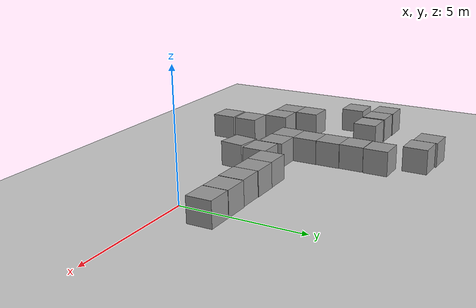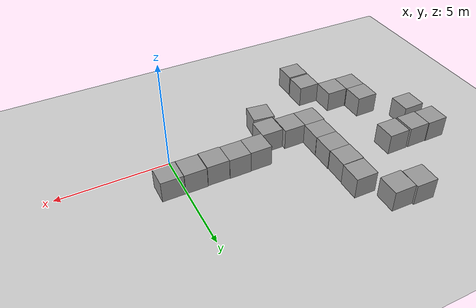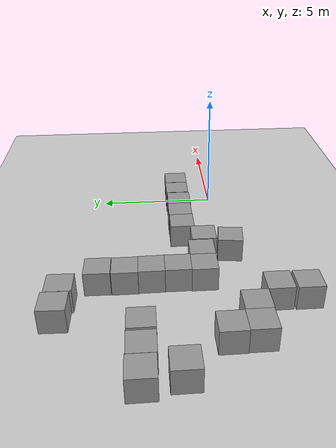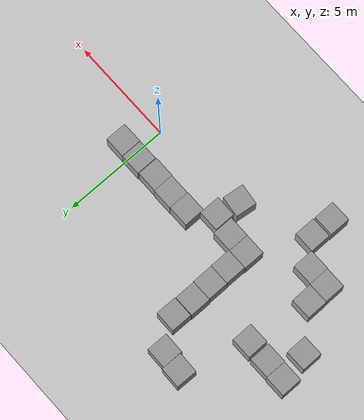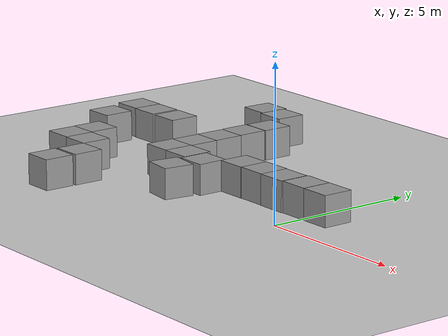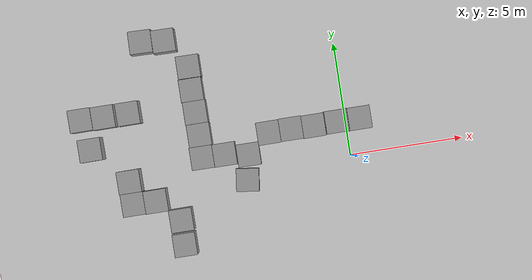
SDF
<sdf version="1.7">
 <world name="default">
  <light name="sun" type="directional">
   <pose>0 0 10 0 -0 0</pose>
   <diffuse>0.8 0.8 0.8 1</diffuse>
   <specular>0.2 0.2 0.2 1</specular>
   <attenuation>
    <range>1000</range>
    <constant>0.9</constant>
    <linear>0.01</linear>
    <quadratic>0.001</quadratic>
   </attenuation>
   <direction>-0.5 0.1 -0.9</direction>
   <spot><inner_angle>0</inner_angle><outer_angle>0</outer_angle><falloff>0</falloff></spot>
  </light>
  <model name="ground_plane">
   <static>1</static>
   <link name="link">
    <collision name="collision">
     <geometry><plane><normal>0 0 1</normal><size>100 100</size></plane></geometry>
     <surface><friction><ode><mu>100</mu><mu2>50</mu2></ode></friction></surface>
    </collision>
    <visual name="visual">
     <cast_shadows>0</cast_shadows>
     <geometry><plane><normal>0 0 1</normal><size>100 100</size></plane></geometry>
     <material>
      <script><uri>file://media/materials/scripts/gazebo.material</uri><name>Gazebo/Grey</name></script>
     </material>
    </visual>
   </link>
  </model>
  <gravity>0 0 -9.8</gravity>
  <magnetic_field>6e-06 2.3e-05 -4.2e-05</magnetic_field>
  <atmosphere type="adiabatic"/>
  <physics type="ode">
   <max_step_size>0.001</max_step_size>
   <real_time_factor>1</real_time_factor>
   <real_time_update_rate>1000</real_time_update_rate>
  </physics>
  <scene><ambient>0.4 0.4 0.4 1</ambient><background>0.7 0.7 0.7 1</background><shadows>1</shadows></scene>
  <audio><device>default</device></audio>
  <spherical_coordinates>
   <surface_model>EARTH_WGS84</surface_model>
   <latitude_deg>0</latitude_deg>
   <longitude_deg>0</longitude_deg>
   <elevation>0</elevation>
   <heading_deg>0</heading_deg>
  </spherical_coordinates>
  <model name="unit_box">
   <pose>-0.438539 1.56413 0.5 0 -0 0</pose>
   <link name="link">
    <inertial>
     <mass>1</mass>
     <inertia>
      <ixx>0.166667</ixx>
      <ixy>0</ixy>
      <ixz>0</ixz>
      <iyy>0.166667</iyy>
      <iyz>0</iyz>
      <izz>0.166667</izz>
     </inertia>
    </inertial>
    <collision name="collision"><geometry><box><size>1 1 1</size></box></geometry></collision>
    <visual name="visual">
     <geometry><box><size>1 1 1</size></box></geometry>
     <material>
      <script><name>Gazebo/Grey</name><uri>file://media/materials/scripts/gazebo.material</uri></script>
     </material>
    </visual>
   </link>
  </model>
  <model name="unit_box_clone">
   <pose>-1.4612 1.53551 0.5 0 -0 -0.000517</pose>
   <link name="link">
    <inertial>
     <mass>1</mass>
     <inertia>
      <ixx>0.166667</ixx>
      <ixy>0</ixy>
      <ixz>0</ixz>
      <iyy>0.166667</iyy>
      <iyz>0</iyz>
      <izz>0.166667</izz>
     </inertia>
    </inertial>
    <collision name="collision"><geometry><box><size>1 1 1</size></box></geometry></collision>
    <visual name="visual">
     <geometry><box><size>1 1 1</size></box></geometry>
     <material>
      <script><name>Gazebo/Grey</name><uri>file://media/materials/scripts/gazebo.material</uri></script>
     </material>
    </visual>
   </link>
  </model>
  <model name="unit_box_clone_0">
   <pose>-2.46123 1.557 0.5 0 0 -0.000525</pose>
   <link name="link">
    <inertial>
     <mass>1</mass>
     <inertia>
      <ixx>0.166667</ixx>
      <ixy>0</ixy>
      <ixz>0</ixz>
      <iyy>0.166667</iyy>
      <iyz>0</iyz>
      <izz>0.166667</izz>
     </inertia>
    </inertial>
    <collision name="collision"><geometry><box><size>1 1 1</size></box></geometry></collision>
    <visual name="visual">
     <geometry><box><size>1 1 1</size></box></geometry>
     <material>
      <script><name>Gazebo/Grey</name><uri>file://media/materials/scripts/gazebo.material</uri></script>
     </material>
    </visual>
   </link>
  </model>
  <model name="unit_box_clone_1">
   <pose>-3.46129 1.54191 0.5 0 -0 -0.000515</pose>
   <link name="link">
    <inertial>
     <mass>1</mass>
     <inertia>
      <ixx>0.166667</ixx>
      <ixy>0</ixy>
      <ixz>0</ixz>
      <iyy>0.166667</iyy>
      <iyz>0</iyz>
      <izz>0.166667</izz>
     </inertia>
    </inertial>
    <collision name="collision"><geometry><box><size>1 1 1</size></box></geometry></collision>
    <visual name="visual">
     <geometry><box><size>1 1 1</size></box></geometry>
     <material>
      <script><name>Gazebo/Grey</name><uri>file://media/materials/scripts/gazebo.material</uri></script>
     </material>
    </visual>
   </link>
  </model>
  <model name="unit_box_clone_2">
   <pose>-4.46349 0.728093 0.5 0 0 -0.002201</pose>
   <link name="link">
    <inertial>
     <mass>1</mass>
     <inertia>
      <ixx>0.166667</ixx>
      <ixy>0</ixy>
      <ixz>0</ixz>
      <iyy>0.166667</iyy>
      <iyz>0</iyz>
      <izz>0.166667</izz>
     </inertia>
    </inertial>
    <collision name="collision"><geometry><box><size>1 1 1</size></box></geometry></collision>
    <visual name="visual">
     <geometry><box><size>1 1 1</size></box></geometry>
     <material>
      <script><name>Gazebo/Grey</name><uri>file://media/materials/scripts/gazebo.material</uri></script>
     </material>
    </visual>
   </link>
  </model>
  <model name="unit_box_clone_3">
   <pose>-4.67276 -0.357795 0.5 -0 -0 -0.124669</pose>
   <link name="link">
    <inertial>
     <mass>1</mass>
     <inertia>
      <ixx>0.166667</ixx>
      <ixy>0</ixy>
      <ixz>0</ixz>
      <iyy>0.166667</iyy>
      <iyz>0</iyz>
      <izz>0.166667</izz>
     </inertia>
    </inertial>
    <collision name="collision"><geometry><box><size>1 1 1</size></box></geometry></collision>
    <visual name="visual">
     <geometry><box><size>1 1 1</size></box></geometry>
     <material>
      <script><name>Gazebo/Grey</name><uri>file://media/materials/scripts/gazebo.material</uri></script>
     </material>
    </visual>
   </link>
  </model>
  <model name="unit_box_0">
   <pose>0.573946 1.55773 0.5 0 -0 0</pose>
   <link name="link">
    <inertial>
     <mass>1</mass>
     <inertia>
      <ixx>0.166667</ixx>
      <ixy>0</ixy>
      <ixz>0</ixz>
      <iyy>0.166667</iyy>
      <iyz>0</iyz>
      <izz>0.166667</izz>
     </inertia>
    </inertial>
    <collision name="collision"><geometry><box><size>1 1 1</size></box></geometry></collision>
    <visual name="visual">
     <geometry><box><size>1 1 1</size></box></geometry>
     <material>
      <script><name>Gazebo/Grey</name><uri>file://media/materials/scripts/gazebo.material</uri></script>
     </material>
    </visual>
   </link>
  </model>
  <model name="unit_box_1">
   <pose>-5.49627 0.901409 0.5 -0 -0 -0.000242</pose>
   <link name="link">
    <inertial>
     <mass>1</mass>
     <inertia>
      <ixx>0.166667</ixx>
      <ixy>0</ixy>
      <ixz>0</ixz>
      <iyy>0.166667</iyy>
      <iyz>0</iyz>
      <izz>0.166667</izz>
     </inertia>
    </inertial>
    <collision name="collision"><geometry><box><size>1 1 1</size></box></geometry></collision>
    <visual name="visual">
     <geometry><box><size>1 1 1</size></box></geometry>
     <material>
      <script><name>Gazebo/Grey</name><uri>file://media/materials/scripts/gazebo.material</uri></script>
     </material>
    </visual>
   </link>
  </model>
  <model name="unit_box_2">
   <pose>-6.49751 0.913269 0.5 0 0 -0.000773</pose>
   <link name="link">
    <inertial>
     <mass>1</mass>
     <inertia>
      <ixx>0.166667</ixx>
      <ixy>0</ixy>
      <ixz>0</ixz>
      <iyy>0.166667</iyy>
      <iyz>0</iyz>
      <izz>0.166667</izz>
     </inertia>
    </inertial>
    <collision name="collision"><geometry><box><size>1 1 1</size></box></geometry></collision>
    <visual name="visual">
     <geometry><box><size>1 1 1</size></box></geometry>
     <material>
      <script><name>Gazebo/Grey</name><uri>file://media/materials/scripts/gazebo.material</uri></script>
     </material>
    </visual>
   </link>
  </model>
  <model name="unit_box_3">
   <pose>-6.46729 1.91328 0.5 0 0 -0.000715</pose>
   <link name="link">
    <inertial>
     <mass>1</mass>
     <inertia>
      <ixx>0.166667</ixx>
      <ixy>0</ixy>
      <ixz>0</ixz>
      <iyy>0.166667</iyy>
      <iyz>0</iyz>
      <izz>0.166667</izz>
     </inertia>
    </inertial>
    <collision name="collision"><geometry><box><size>1 1 1</size></box></geometry></collision>
    <visual name="visual">
     <geometry><box><size>1 1 1</size></box></geometry>
     <material>
      <script><name>Gazebo/Grey</name><uri>file://media/materials/scripts/gazebo.material</uri></script>
     </material>
    </visual>
   </link>
  </model>
  <model name="unit_box_4">
   <pose>-6.47987 2.91342 0.5 0 0 -0.000837</pose>
   <link name="link">
    <inertial>
     <mass>1</mass>
     <inertia>
      <ixx>0.166667</ixx>
      <ixy>0</ixy>
      <ixz>0</ixz>
      <iyy>0.166667</iyy>
      <iyz>0</iyz>
      <izz>0.166667</izz>
     </inertia>
    </inertial>
    <collision name="collision"><geometry><box><size>1 1 1</size></box></geometry></collision>
    <visual name="visual">
     <geometry><box><size>1 1 1</size></box></geometry>
     <material>
      <script><name>Gazebo/Grey</name><uri>file://media/materials/scripts/gazebo.material</uri></script>
     </material>
    </visual>
   </link>
  </model>
  <model name="unit_box_5">
   <pose>-6.5062 3.91348 0.5 -0 -0 -0.000852</pose>
   <link name="link">
    <inertial>
     <mass>1</mass>
     <inertia>
      <ixx>0.166667</ixx>
      <ixy>0</ixy>
      <ixz>0</ixz>
      <iyy>0.166667</iyy>
      <iyz>0</iyz>
      <izz>0.166667</izz>
     </inertia>
    </inertial>
    <collision name="collision"><geometry><box><size>1 1 1</size></box></geometry></collision>
    <visual name="visual">
     <geometry><box><size>1 1 1</size></box></geometry>
     <material>
      <script><name>Gazebo/Grey</name><uri>file://media/materials/scripts/gazebo.material</uri></script>
     </material>
    </visual>
   </link>
  </model>
  <model name="unit_box_6">
   <pose>-6.47846 4.93044 0.5 -0 -0 -0.00887</pose>
   <link name="link">
    <inertial>
     <mass>1</mass>
     <inertia>
      <ixx>0.166667</ixx>
      <ixy>0</ixy>
      <ixz>0</ixz>
      <iyy>0.166667</iyy>
      <iyz>0</iyz>
      <izz>0.166667</izz>
     </inertia>
    </inertial>
    <collision name="collision"><geometry><box><size>1 1 1</size></box></geometry></collision>
    <visual name="visual">
     <geometry><box><size>1 1 1</size></box></geometry>
     <material>
      <script><name>Gazebo/Grey</name><uri>file://media/materials/scripts/gazebo.material</uri></script>
     </material>
    </visual>
   </link>
  </model>
  <model name="unit_box_7">
   <pose>-7.376 6.22178 0.5 -0 -0 -0.011822</pose>
   <link name="link">
    <inertial>
     <mass>1</mass>
     <inertia>
      <ixx>0.166667</ixx>
      <ixy>0</ixy>
      <ixz>0</ixz>
      <iyy>0.166667</iyy>
      <iyz>0</iyz>
      <izz>0.166667</izz>
     </inertia>
    </inertial>
    <collision name="collision"><geometry><box><size>1 1 1</size></box></geometry></collision>
    <visual name="visual">
     <geometry><box><size>1 1 1</size></box></geometry>
     <material>
      <script><name>Gazebo/Grey</name><uri>file://media/materials/scripts/gazebo.material</uri></script>
     </material>
    </visual>
   </link>
  </model>
  <model name="unit_box_8">
   <pose>-8.3792 6.32235 0.5 0 0 -0.022234</pose>
   <link name="link">
    <inertial>
     <mass>1</mass>
     <inertia>
      <ixx>0.166667</ixx>
      <ixy>0</ixy>
      <ixz>0</ixz>
      <iyy>0.166667</iyy>
      <iyz>0</iyz>
      <izz>0.166667</izz>
     </inertia>
    </inertial>
    <collision name="collision"><geometry><box><size>1 1 1</size></box></geometry></collision>
    <visual name="visual">
     <geometry><box><size>1 1 1</size></box></geometry>
     <material>
      <script><name>Gazebo/Grey</name><uri>file://media/materials/scripts/gazebo.material</uri></script>
     </material>
    </visual>
   </link>
  </model>
  <model name="unit_box_9">
   <pose>-7.80806 -1.6502 0.5 0 -0 0.005483</pose>
   <link name="link">
    <inertial>
     <mass>1</mass>
     <inertia>
      <ixx>0.166667</ixx>
      <ixy>0</ixy>
      <ixz>0</ixz>
      <iyy>0.166667</iyy>
      <iyz>0</iyz>
      <izz>0.166667</izz>
     </inertia>
    </inertial>
    <collision name="collision"><geometry><box><size>1 1 1</size></box></geometry></collision>
    <visual name="visual">
     <geometry><box><size>1 1 1</size></box></geometry>
     <material>
      <script><name>Gazebo/Grey</name><uri>file://media/materials/scripts/gazebo.material</uri></script>
     </material>
    </visual>
   </link>
  </model>
  <model name="unit_box_9_clone">
   <pose>-7.82481 -2.73278 0.5 -0 -0 -0</pose>
   <link name="link">
    <inertial>
     <mass>1</mass>
     <inertia>
      <ixx>0.166667</ixx>
      <ixy>0</ixy>
      <ixz>0</ixz>
      <iyy>0.166667</iyy>
      <iyz>0</iyz>
      <izz>0.166667</izz>
     </inertia>
    </inertial>
    <collision name="collision"><geometry><box><size>1 1 1</size></box></geometry></collision>
    <visual name="visual">
     <geometry><box><size>1 1 1</size></box></geometry>
     <material>
      <script><name>Gazebo/Grey</name><uri>file://media/materials/scripts/gazebo.material</uri></script>
     </material>
    </visual>
   </link>
  </model>
  <model name="unit_box_10">
   <pose>-8.78708 -0.655364 0.5 0 -0 0.005103</pose>
   <link name="link">
    <inertial>
     <mass>1</mass>
     <inertia>
      <ixx>0.166667</ixx>
      <ixy>0</ixy>
      <ixz>0</ixz>
      <iyy>0.166667</iyy>
      <iyz>0</iyz>
      <izz>0.166667</izz>
     </inertia>
    </inertial>
    <collision name="collision"><geometry><box><size>1 1 1</size></box></geometry></collision>
    <visual name="visual">
     <geometry><box><size>1 1 1</size></box></geometry>
     <material>
      <script><name>Gazebo/Grey</name><uri>file://media/materials/scripts/gazebo.material</uri></script>
     </material>
    </visual>
   </link>
  </model>
  <model name="unit_box_9_clone_0">
   <pose>-9.78739 -0.637958 0.5 0 -0 0.004706</pose>
   <link name="link">
    <inertial>
     <mass>1</mass>
     <inertia>
      <ixx>0.166667</ixx>
      <ixy>0</ixy>
      <ixz>0</ixz>
      <iyy>0.166667</iyy>
      <iyz>0</iyz>
      <izz>0.166667</izz>
     </inertia>
    </inertial>
    <collision name="collision"><geometry><box><size>1 1 1</size></box></geometry></collision>
    <visual name="visual">
     <geometry><box><size>1 1 1</size></box></geometry>
     <material>
      <script><name>Gazebo/Grey</name><uri>file://media/materials/scripts/gazebo.material</uri></script>
     </material>
    </visual>
   </link>
  </model>
  <model name="unit_box_9_clone_1">
   <pose>-9.81217 0.362008 0.5 0 -0 0.004811</pose>
   <link name="link">
    <inertial>
     <mass>1</mass>
     <inertia>
      <ixx>0.166667</ixx>
      <ixy>0</ixy>
      <ixz>0</ixz>
      <iyy>0.166667</iyy>
      <iyz>0</iyz>
      <izz>0.166667</izz>
     </inertia>
    </inertial>
    <collision name="collision"><geometry><box><size>1 1 1</size></box></geometry></collision>
    <visual name="visual">
     <geometry><box><size>1 1 1</size></box></geometry>
     <material>
      <script><name>Gazebo/Grey</name><uri>file://media/materials/scripts/gazebo.material</uri></script>
     </material>
    </visual>
   </link>
  </model>
  <model name="unit_box_9_clone_2">
   <pose>-11.2792 1.99679 0.5 0 -0 0.00545</pose>
   <link name="link">
    <inertial>
     <mass>1</mass>
     <inertia>
      <ixx>0.166667</ixx>
      <ixy>0</ixy>
      <ixz>0</ixz>
      <iyy>0.166667</iyy>
      <iyz>0</iyz>
      <izz>0.166667</izz>
     </inertia>
    </inertial>
    <collision name="collision"><geometry><box><size>1 1 1</size></box></geometry></collision>
    <visual name="visual">
     <geometry><box><size>1 1 1</size></box></geometry>
     <material>
      <script><name>Gazebo/Grey</name><uri>file://media/materials/scripts/gazebo.material</uri></script>
     </material>
    </visual>
   </link>
  </model>
  <model name="unit_box_9_clone_3">
   <pose>-11.5049 3.34353 0.5 0 -0 0.00545</pose>
   <link name="link">
    <inertial>
     <mass>1</mass>
     <inertia>
      <ixx>0.166667</ixx>
      <ixy>0</ixy>
      <ixz>0</ixz>
      <iyy>0.166667</iyy>
      <iyz>0</iyz>
      <izz>0.166667</izz>
     </inertia>
    </inertial>
    <collision name="collision"><geometry><box><size>1 1 1</size></box></geometry></collision>
    <visual name="visual">
     <geometry><box><size>1 1 1</size></box></geometry>
     <material>
      <script><name>Gazebo/Grey</name><uri>file://media/materials/scripts/gazebo.material</uri></script>
     </material>
    </visual>
   </link>
  </model>
  <model name="unit_box_9_clone_4">
   <pose>-10.5017 3.32335 0.5 0 -0 0.005471</pose>
   <link name="link">
    <inertial>
     <mass>1</mass>
     <inertia>
      <ixx>0.166667</ixx>
      <ixy>0</ixy>
      <ixz>0</ixz>
      <iyy>0.166667</iyy>
      <iyz>0</iyz>
      <izz>0.166667</izz>
     </inertia>
    </inertial>
    <collision name="collision"><geometry><box><size>1 1 1</size></box></geometry></collision>
    <visual name="visual">
     <geometry><box><size>1 1 1</size></box></geometry>
     <material>
      <script><name>Gazebo/Grey</name><uri>file://media/materials/scripts/gazebo.material</uri></script>
     </material>
    </visual>
   </link>
  </model>
  <model name="unit_box_9_clone_5">
   <pose>-9.40624 3.32103 0.5 0 -0 0.005482</pose>
   <link name="link">
    <inertial>
     <mass>1</mass>
     <inertia>
      <ixx>0.166667</ixx>
      <ixy>0</ixy>
      <ixz>0</ixz>
      <iyy>0.166667</iyy>
      <iyz>0</iyz>
      <izz>0.166667</izz>
     </inertia>
    </inertial>
    <collision name="collision"><geometry><box><size>1 1 1</size></box></geometry></collision>
    <visual name="visual">
     <geometry><box><size>1 1 1</size></box></geometry>
     <material>
      <script><name>Gazebo/Grey</name><uri>file://media/materials/scripts/gazebo.material</uri></script>
     </material>
    </visual>
   </link>
  </model>
 </world>
</sdf>
